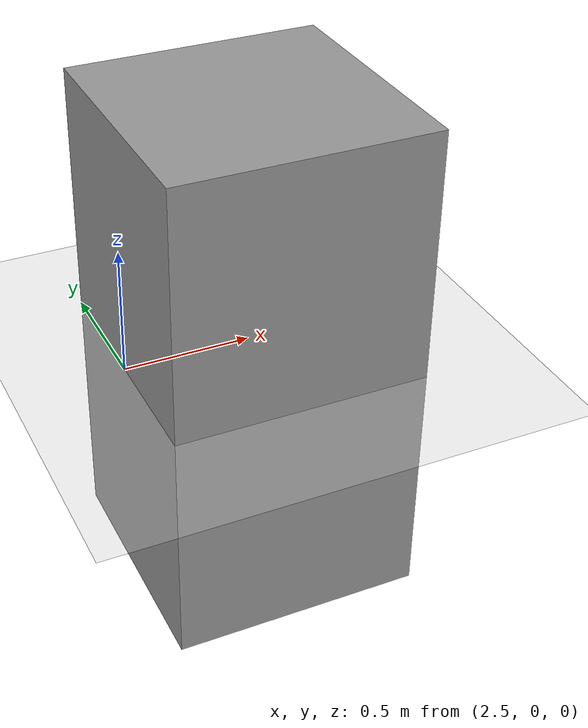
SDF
<sdf version='1.6'>
  <world name='default'>
    <include>
      <uri>model://sun</uri>
    </include>

    <include>
      <uri>model://ground_plane</uri>
    </include>

    <!-- Disable gravity along all axis -->
    <gravity>0 0 0</gravity>

    <include>
      <pose>3 0 0 0 3.141592 0</pose>
      <uri>model://light_panel</uri>
    </include>
  </world>
</sdf>

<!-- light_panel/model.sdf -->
<sdf version='1.6'>
  <model name='light_panel'>
    <link name='base'>
      <inertial>
        <mass>50</mass>
        <inertia>
          <ixx>20.8333</ixx>
          <ixy>0</ixy>
          <ixz>0</ixz>
          <iyy>20.8333</iyy>
          <iyz>0</iyz>
          <izz>8.33333</izz>
        </inertia>
        <pose frame=''>0 0 0 0 -0 0</pose>
      </inertial>
      <visual name='visual'>
        <geometry>
          <box>
            <size>1 1 2</size>
          </box>
        </geometry>
        <material>
          <script>
            <name>Gazebo/Grey</name>
            <uri>file://media/materials/scripts/gazebo.material</uri>
          </script>
        </material>
      </visual>
      <collision name='collision'>
        <geometry>
          <box>
            <size>1 1 2</size>
          </box>
        </geometry>
      </collision>
    </link>
    <plugin name="plugin" filename="libLightControl.so">
    </plugin>
  </model>
</sdf>
